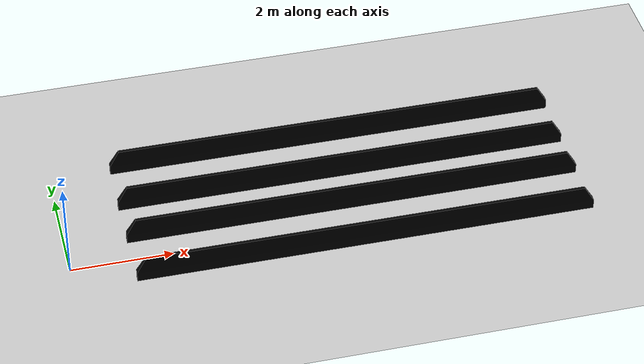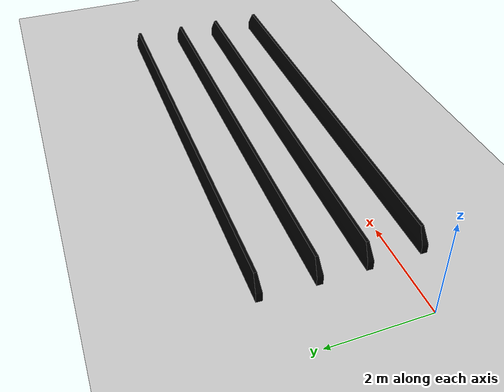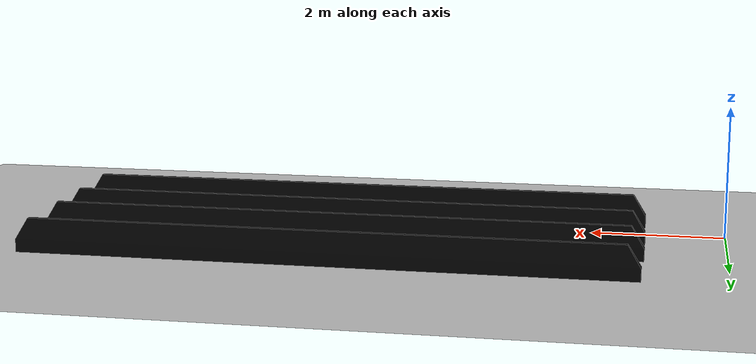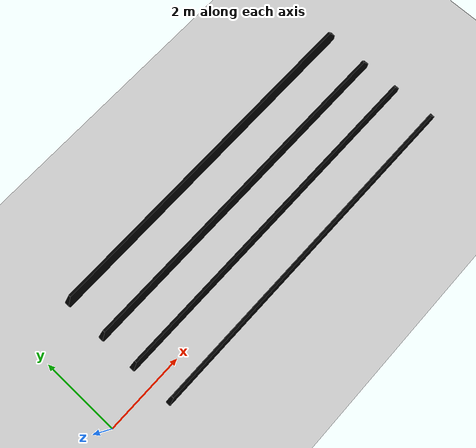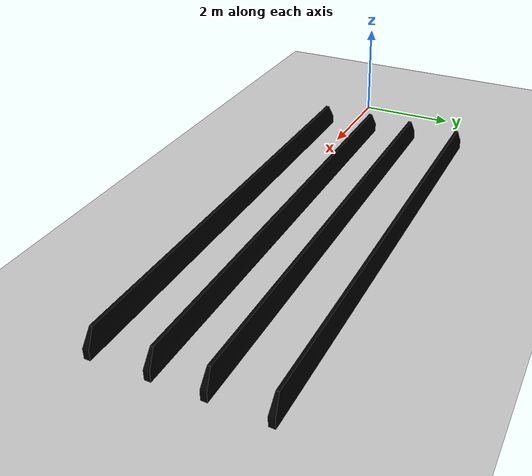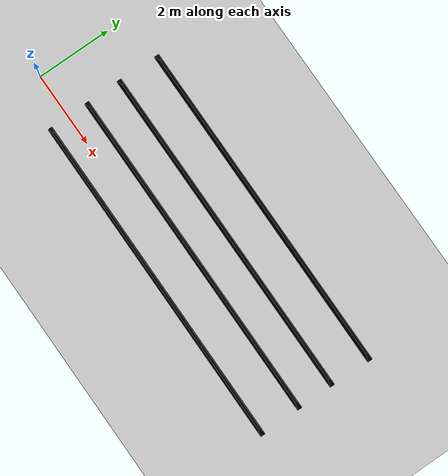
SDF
<sdf version="1.7">
 <world name="default">
  <light name="sun" type="directional">
   <pose>0 0 10 0 -0 0</pose>
   <diffuse>0.8 0.8 0.8 1</diffuse>
   <specular>0.2 0.2 0.2 1</specular>
   <attenuation>
    <range>1000</range>
    <constant>0.9</constant>
    <linear>0.01</linear>
    <quadratic>0.001</quadratic>
   </attenuation>
   <direction>-0.5 0.1 -0.9</direction>
   <spot><inner_angle>0</inner_angle><outer_angle>0</outer_angle><falloff>0</falloff></spot>
  </light>
  <model name="ground_plane">
   <static>1</static>
   <link name="link">
    <collision name="collision">
     <geometry><plane><normal>0 0 1</normal><size>100 100</size></plane></geometry>
     <surface><friction><ode><mu>100</mu><mu2>50</mu2></ode></friction></surface>
    </collision>
    <visual name="visual">
     <cast_shadows>0</cast_shadows>
     <geometry><plane><normal>0 0 1</normal><size>100 100</size></plane></geometry>
     <material>
      <script><uri>file://media/materials/scripts/gazebo.material</uri><name>Gazebo/Grey</name></script>
     </material>
    </visual>
   </link>
  </model>
  <gravity>0 0 -9.8</gravity>
  <magnetic_field>6e-06 2.3e-05 -4.2e-05</magnetic_field>
  <atmosphere type="adiabatic"/>
  <physics type="ode">
   <max_step_size>0.001</max_step_size>
   <real_time_factor>1</real_time_factor>
   <real_time_update_rate>1000</real_time_update_rate>
  </physics>
  <scene><ambient>0.4 0.4 0.4 1</ambient><background>0.7 0.7 0.7 1</background><shadows>1</shadows></scene>
  <spherical_coordinates>
   <surface_model>EARTH_WGS84</surface_model>
   <latitude_deg>0</latitude_deg>
   <longitude_deg>0</longitude_deg>
   <elevation>0</elevation>
   <heading_deg>0</heading_deg>
  </spherical_coordinates>
  <model name="drc_practice_yellow_parking_block">
   <link name="link_clone_clone">
    <pose>-1.45234 -3.35885 0 0 -0 0</pose>
    <inertial>
     <mass>1</mass>
     <inertia><ixx>1</ixx><ixy>0</ixy><ixz>0</ixz><iyy>1</iyy><iyz>0</iyz><izz>1</izz></inertia>
    </inertial>
    <visual name="visual">
     <geometry>
      <mesh><uri>model://drc_practice_yellow_parking_block/meshes/block.dae</uri><scale>0.8 5 5.01</scale></mesh>
     </geometry>
     <material>
      <shader type="pixel"><normal_map>__default__</normal_map></shader>
      <script><name>ModelPreview_1::link::visual_MATERIAL_</name><uri>__default__</uri></script>
      <ambient>0 0 0 1</ambient>
      <diffuse>0 0 0 1</diffuse>
      <specular>0 0 0 1</specular>
      <emissive>0 0 0 1</emissive>
     </material>
    </visual>
    <collision name="collision">
     <geometry>
      <mesh>
       <uri>/usr/share/gazebo-11/models/drc_practice_yellow_parking_block/meshes/block.dae</uri>
       <scale>1 1 1</scale>
      </mesh>
     </geometry>
     <surface>
      <friction>
       <ode><mu>1</mu><mu2>1</mu2><fdir1>0 0 0</fdir1><slip1>0</slip1><slip2>0</slip2></ode>
       <torsional>
        <coefficient>1</coefficient>
        <patch_radius>0</patch_radius>
        <surface_radius>0</surface_radius>
        <use_patch_radius>1</use_patch_radius>
        <ode><slip>0</slip></ode>
       </torsional>
      </friction>
      <bounce><restitution_coefficient>0</restitution_coefficient><threshold>1e+06</threshold></bounce>
      <contact>
       <collide_without_contact>0</collide_without_contact>
       <collide_without_contact_bitmask>1</collide_without_contact_bitmask>
       <collide_bitmask>1</collide_bitmask>
       <ode>
        <soft_cfm>0</soft_cfm>
        <soft_erp>0.2</soft_erp>
        <kp>1e+13</kp>
        <kd>1</kd>
        <max_vel>0.01</max_vel>
        <min_depth>0</min_depth>
       </ode>
       <bullet>
        <split_impulse>1</split_impulse>
        <split_impulse_penetration_threshold>-0.01</split_impulse_penetration_threshold>
        <soft_cfm>0</soft_cfm>
        <soft_erp>0.2</soft_erp>
        <kp>1e+13</kp>
        <kd>1</kd>
       </bullet>
      </contact>
     </surface>
    </collision>
   </link>
   <link name="link_clone_clone_clone">
    <pose>-0.495755 -3.35455 0 0 -0 0</pose>
    <inertial>
     <mass>1</mass>
     <inertia><ixx>1</ixx><ixy>0</ixy><ixz>0</ixz><iyy>1</iyy><iyz>0</iyz><izz>1</izz></inertia>
    </inertial>
    <visual name="visual">
     <geometry>
      <mesh><uri>model://drc_practice_yellow_parking_block/meshes/block.dae</uri><scale>0.8 5 5.01</scale></mesh>
     </geometry>
     <material>
      <shader type="pixel"><normal_map>__default__</normal_map></shader>
      <script><name>ModelPreview_1::link::visual_MATERIAL_</name><uri>__default__</uri></script>
      <ambient>0 0 0 1</ambient>
      <diffuse>0 0 0 1</diffuse>
      <specular>0 0 0 1</specular>
      <emissive>0 0 0 1</emissive>
     </material>
    </visual>
    <collision name="collision">
     <geometry>
      <mesh>
       <uri>/usr/share/gazebo-11/models/drc_practice_yellow_parking_block/meshes/block.dae</uri>
       <scale>1 1 1</scale>
      </mesh>
     </geometry>
     <surface>
      <friction>
       <ode><mu>1</mu><mu2>1</mu2><fdir1>0 0 0</fdir1><slip1>0</slip1><slip2>0</slip2></ode>
       <torsional>
        <coefficient>1</coefficient>
        <patch_radius>0</patch_radius>
        <surface_radius>0</surface_radius>
        <use_patch_radius>1</use_patch_radius>
        <ode><slip>0</slip></ode>
       </torsional>
      </friction>
      <bounce><restitution_coefficient>0</restitution_coefficient><threshold>1e+06</threshold></bounce>
      <contact>
       <collide_without_contact>0</collide_without_contact>
       <collide_without_contact_bitmask>1</collide_without_contact_bitmask>
       <collide_bitmask>1</collide_bitmask>
       <ode>
        <soft_cfm>0</soft_cfm>
        <soft_erp>0.2</soft_erp>
        <kp>1e+13</kp>
        <kd>1</kd>
        <max_vel>0.01</max_vel>
        <min_depth>0</min_depth>
       </ode>
       <bullet>
        <split_impulse>1</split_impulse>
        <split_impulse_penetration_threshold>-0.01</split_impulse_penetration_threshold>
        <soft_cfm>0</soft_cfm>
        <soft_erp>0.2</soft_erp>
        <kp>1e+13</kp>
        <kd>1</kd>
       </bullet>
      </contact>
     </surface>
    </collision>
   </link>
   <link name="link_clone_clone_clone_0">
    <pose>-2.53593 -3.37097 0 0 -0 0</pose>
    <inertial>
     <mass>1</mass>
     <inertia><ixx>1</ixx><ixy>0</ixy><ixz>0</ixz><iyy>1</iyy><iyz>0</iyz><izz>1</izz></inertia>
    </inertial>
    <visual name="visual">
     <geometry>
      <mesh><uri>model://drc_practice_yellow_parking_block/meshes/block.dae</uri><scale>0.8 5 5.01</scale></mesh>
     </geometry>
     <material>
      <shader type="pixel"><normal_map>__default__</normal_map></shader>
      <script><name>ModelPreview_1::link::visual_MATERIAL_</name><uri>__default__</uri></script>
      <ambient>0 0 0 1</ambient>
      <diffuse>0 0 0 1</diffuse>
      <specular>0 0 0 1</specular>
      <emissive>0 0 0 1</emissive>
     </material>
    </visual>
    <collision name="collision">
     <geometry>
      <mesh>
       <uri>/usr/share/gazebo-11/models/drc_practice_yellow_parking_block/meshes/block.dae</uri>
       <scale>1 1 1</scale>
      </mesh>
     </geometry>
     <surface>
      <friction>
       <ode><mu>1</mu><mu2>1</mu2><fdir1>0 0 0</fdir1><slip1>0</slip1><slip2>0</slip2></ode>
       <torsional>
        <coefficient>1</coefficient>
        <patch_radius>0</patch_radius>
        <surface_radius>0</surface_radius>
        <use_patch_radius>1</use_patch_radius>
        <ode><slip>0</slip></ode>
       </torsional>
      </friction>
      <bounce><restitution_coefficient>0</restitution_coefficient><threshold>1e+06</threshold></bounce>
      <contact>
       <collide_without_contact>0</collide_without_contact>
       <collide_without_contact_bitmask>1</collide_without_contact_bitmask>
       <collide_bitmask>1</collide_bitmask>
       <ode>
        <soft_cfm>0</soft_cfm>
        <soft_erp>0.2</soft_erp>
        <kp>1e+13</kp>
        <kd>1</kd>
        <max_vel>0.01</max_vel>
        <min_depth>0</min_depth>
       </ode>
       <bullet>
        <split_impulse>1</split_impulse>
        <split_impulse_penetration_threshold>-0.01</split_impulse_penetration_threshold>
        <soft_cfm>0</soft_cfm>
        <soft_erp>0.2</soft_erp>
        <kp>1e+13</kp>
        <kd>1</kd>
       </bullet>
      </contact>
     </surface>
    </collision>
   </link>
   <link name="link_clone_clone_clone_1">
    <pose>0.594849 -3.37654 0 0 -0 0</pose>
    <inertial>
     <mass>1</mass>
     <inertia><ixx>1</ixx><ixy>0</ixy><ixz>0</ixz><iyy>1</iyy><iyz>0</iyz><izz>1</izz></inertia>
    </inertial>
    <visual name="visual">
     <geometry>
      <mesh><uri>model://drc_practice_yellow_parking_block/meshes/block.dae</uri><scale>0.8 5 5.01</scale></mesh>
     </geometry>
     <material>
      <shader type="pixel"><normal_map>__default__</normal_map></shader>
      <script><name>ModelPreview_1::link::visual_MATERIAL_</name><uri>__default__</uri></script>
      <ambient>0 0 0 1</ambient>
      <diffuse>0 0 0 1</diffuse>
      <specular>0 0 0 1</specular>
      <emissive>0 0 0 1</emissive>
     </material>
    </visual>
    <collision name="collision">
     <geometry>
      <mesh>
       <uri>/usr/share/gazebo-11/models/drc_practice_yellow_parking_block/meshes/block.dae</uri>
       <scale>1 1 1</scale>
      </mesh>
     </geometry>
     <surface>
      <friction>
       <ode><mu>1</mu><mu2>1</mu2><fdir1>0 0 0</fdir1><slip1>0</slip1><slip2>0</slip2></ode>
       <torsional>
        <coefficient>1</coefficient>
        <patch_radius>0</patch_radius>
        <surface_radius>0</surface_radius>
        <use_patch_radius>1</use_patch_radius>
        <ode><slip>0</slip></ode>
       </torsional>
      </friction>
      <bounce><restitution_coefficient>0</restitution_coefficient><threshold>1e+06</threshold></bounce>
      <contact>
       <collide_without_contact>0</collide_without_contact>
       <collide_without_contact_bitmask>1</collide_without_contact_bitmask>
       <collide_bitmask>1</collide_bitmask>
       <ode>
        <soft_cfm>0</soft_cfm>
        <soft_erp>0.2</soft_erp>
        <kp>1e+13</kp>
        <kd>1</kd>
        <max_vel>0.01</max_vel>
        <min_depth>0</min_depth>
       </ode>
       <bullet>
        <split_impulse>1</split_impulse>
        <split_impulse_penetration_threshold>-0.01</split_impulse_penetration_threshold>
        <soft_cfm>0</soft_cfm>
        <soft_erp>0.2</soft_erp>
        <kp>1e+13</kp>
        <kd>1</kd>
       </bullet>
      </contact>
     </surface>
    </collision>
   </link>
   <static>1</static>
   <pose>2.33847 2.00606 0 0 -0 1.56887</pose>
  </model>
 </world>
</sdf>
